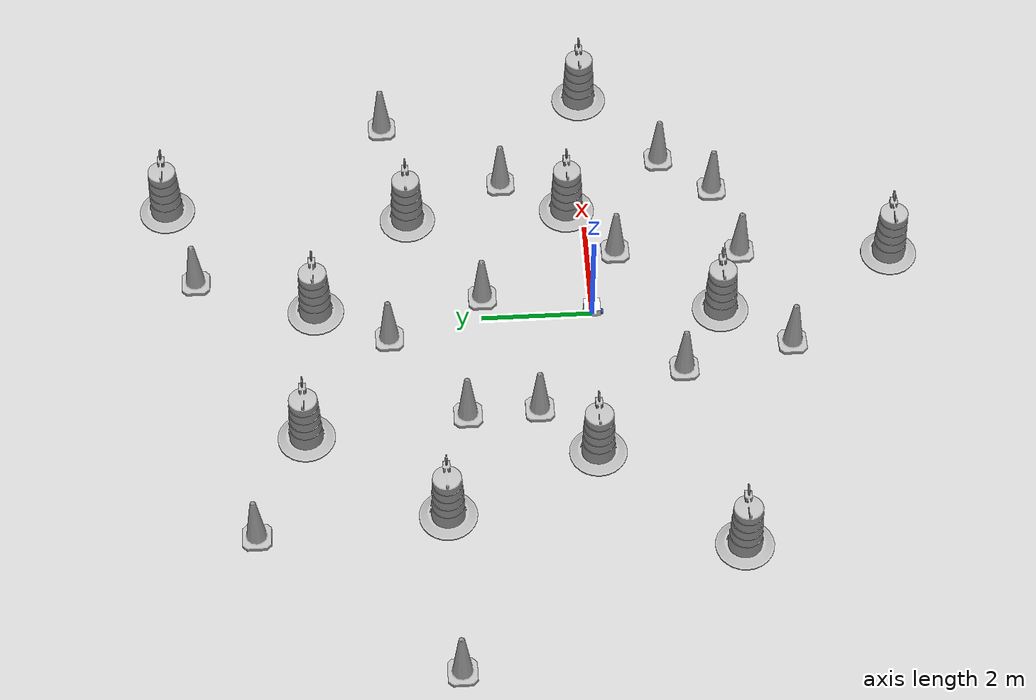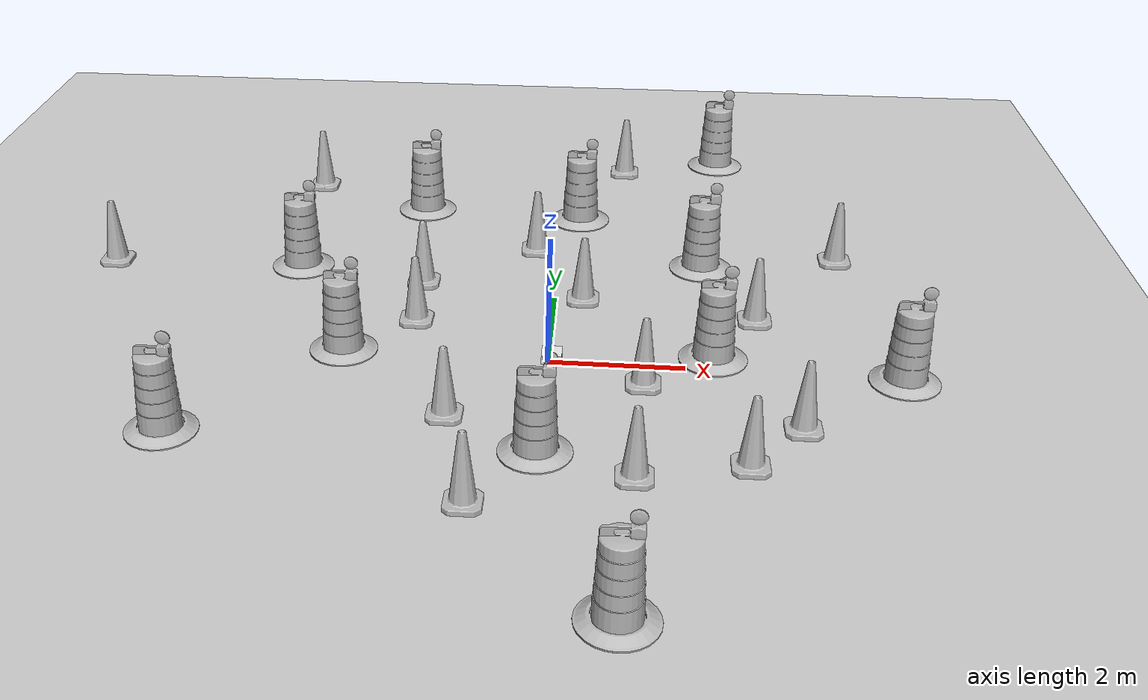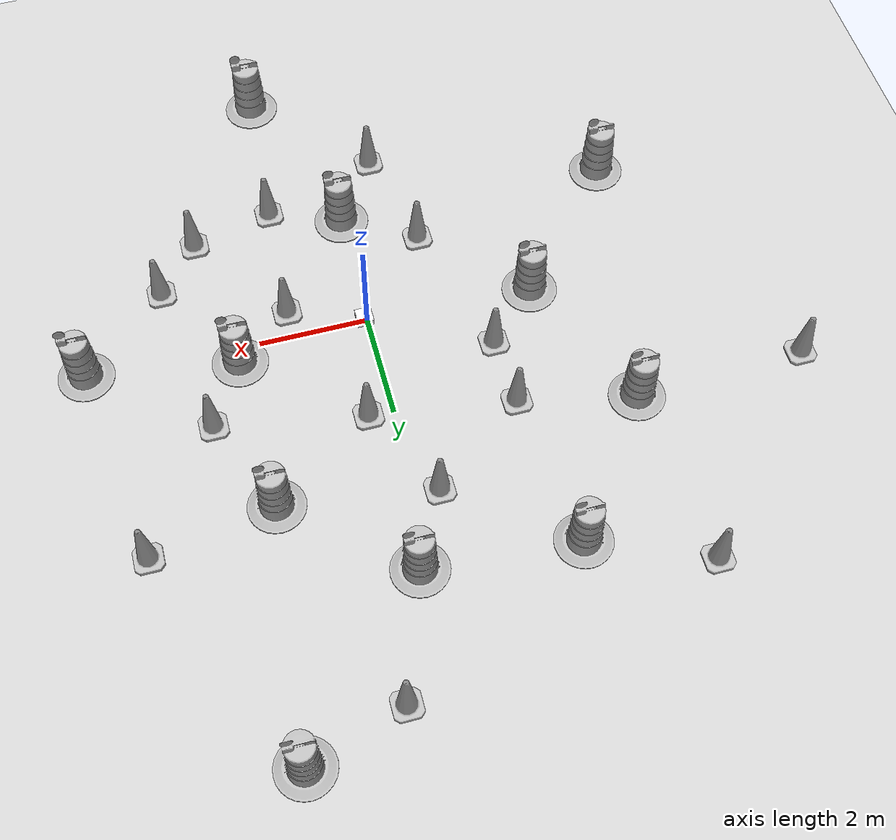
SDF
<sdf version="1.7">
 <world name="default">
  <light name="sun" type="directional">
   <pose>0 0 10 0 -0 0</pose>
   <diffuse>0.8 0.8 0.8 1</diffuse>
   <specular>0.2 0.2 0.2 1</specular>
   <attenuation>
    <range>1000</range>
    <constant>0.9</constant>
    <linear>0.01</linear>
    <quadratic>0.001</quadratic>
   </attenuation>
   <direction>-0.5 0.1 -0.9</direction>
   <spot><inner_angle>0</inner_angle><outer_angle>0</outer_angle><falloff>0</falloff></spot>
  </light>
  <model name="ground_plane">
   <static>1</static>
   <link name="link">
    <collision name="collision">
     <geometry><plane><normal>0 0 1</normal><size>100 100</size></plane></geometry>
     <surface>
      <contact><collide_bitmask>65535</collide_bitmask></contact>
      <friction><ode><mu>100</mu><mu2>50</mu2></ode></friction>
     </surface>
    </collision>
    <visual name="visual">
     <cast_shadows>0</cast_shadows>
     <geometry><plane><normal>0 0 1</normal><size>100 100</size></plane></geometry>
     <material>
      <script><uri>file://media/materials/scripts/gazebo.material</uri><name>Gazebo/Grey</name></script>
     </material>
    </visual>
   </link>
  </model>
  <gravity>0 0 -9.8</gravity>
  <magnetic_field>6e-06 2.3e-05 -4.2e-05</magnetic_field>
  <atmosphere type="adiabatic"/>
  <physics type="ode">
   <max_step_size>0.001</max_step_size>
   <real_time_factor>1</real_time_factor>
   <real_time_update_rate>1000</real_time_update_rate>
  </physics>
  <scene><ambient>0.4 0.4 0.4 1</ambient><background>0.7 0.7 0.7 1</background><shadows>1</shadows></scene>
  <audio><device>default</device></audio>
  <spherical_coordinates>
   <surface_model>EARTH_WGS84</surface_model>
   <latitude_deg>0</latitude_deg>
   <longitude_deg>0</longitude_deg>
   <elevation>0</elevation>
   <heading_deg>0</heading_deg>
  </spherical_coordinates>
  <model name="my_bot">
   <link name="base_link">
    <inertial>
     <pose>0.055714 0 0.078571 0 -0 0</pose>
     <mass>0.7</mass>
     <inertia>
      <ixx>0.0064169</ixx>
      <ixy>0</ixy>
      <ixz>0.00118929</ixz>
      <iyy>0.00745405</iyy>
      <iyz>0</iyz>
      <izz>0.00876214</izz>
     </inertia>
    </inertial>
    <collision name="base_link_fixed_joint_lump__chassis_collision">
     <pose>0.05 0 0.075 0 -0 0</pose>
     <geometry><box><size>0.3 0.3 0.15</size></box></geometry>
    </collision>
    <collision name="base_link_fixed_joint_lump__caster_wheel_collision_1">
     <pose>0.14 0 0 0 -0 0</pose>
     <geometry><sphere><radius>0.05</radius></sphere></geometry>
     <surface><friction><ode><mu>0.001</mu><mu2>0.001</mu2></ode></friction></surface>
    </collision>
    <collision name="base_link_fixed_joint_lump__laser_frame_collision_2">
     <pose>0 0 0.175 0 -0 0</pose>
     <geometry><cylinder><length>0.04</length><radius>0.05</radius></cylinder></geometry>
    </collision>
    <visual name="base_link_fixed_joint_lump__chassis_visual">
     <pose>0.05 0 0.075 0 -0 0</pose>
     <geometry><box><size>0.3 0.3 0.15</size></box></geometry>
     <material>
      <script><name>Gazebo/White</name><uri>file://media/materials/scripts/gazebo.material</uri></script>
     </material>
    </visual>
    <visual name="base_link_fixed_joint_lump__caster_wheel_visual_1">
     <pose>0.14 0 0 0 -0 0</pose>
     <geometry><sphere><radius>0.05</radius></sphere></geometry>
     <material>
      <script><name>Gazebo/Black</name><uri>file://media/materials/scripts/gazebo.material</uri></script>
     </material>
    </visual>
    <visual name="base_link_fixed_joint_lump__laser_frame_visual_2">
     <pose>0 0 0.175 0 -0 0</pose>
     <geometry><cylinder><length>0.04</length><radius>0.05</radius></cylinder></geometry>
     <material>
      <script><name>Gazebo/Red</name><uri>file://media/materials/scripts/gazebo.material</uri></script>
     </material>
    </visual>
    <sensor name="laser" type="ray">
     <visualize>1</visualize>
     <update_rate>10</update_rate>
     <ray>
      <scan>
       <horizontal>
        <samples>360</samples>
        <min_angle>-3.14</min_angle>
        <max_angle>3.14</max_angle>
        <resolution>1</resolution>
       </horizontal>
       <vertical><samples>1</samples><min_angle>0</min_angle><max_angle>0</max_angle></vertical>
      </scan>
      <range><min>0.3</min><max>12</max></range>
     </ray>
     <plugin name="laser_controller" filename="libgazebo_ros_ray_sensor.so">
      <ros><argument>~/out:=scan</argument></ros>
      <output_type>sensor_msgs/LaserScan</output_type>
      <frame_name>laser_frame</frame_name>
     </plugin>
     <pose>0 0 0.175 0 -0 0</pose>
    </sensor>
   </link>
   <joint name="left_wheel_joint" type="revolute">
    <pose relative_to="base_link">0 0.175 0 -1.5708 0 0</pose>
    <parent>base_link</parent>
    <child>left_wheel</child>
    <axis>
     <xyz>0 0 1</xyz>
     <limit><lower>-1e+16</lower><upper>1e+16</upper></limit>
     <dynamics><spring_reference>0</spring_reference><spring_stiffness>0</spring_stiffness></dynamics>
    </axis>
   </joint>
   <link name="left_wheel">
    <pose relative_to="left_wheel_joint">0 0 0 0 -0 0</pose>
    <inertial>
     <mass>0.1</mass>
     <inertia>
      <ixx>7.58333e-05</ixx>
      <ixy>0</ixy>
      <ixz>0</ixz>
      <iyy>7.58333e-05</iyy>
      <iyz>0</iyz>
      <izz>0.000125</izz>
     </inertia>
    </inertial>
    <collision name="left_wheel_collision">
     <geometry><cylinder><length>0.04</length><radius>0.05</radius></cylinder></geometry>
    </collision>
    <visual name="left_wheel_visual">
     <geometry><cylinder><length>0.04</length><radius>0.05</radius></cylinder></geometry>
     <material>
      <script><name>Gazebo/Blue</name><uri>file://media/materials/scripts/gazebo.material</uri></script>
     </material>
    </visual>
   </link>
   <joint name="right_wheel_joint" type="revolute">
    <pose relative_to="base_link">0 -0.175 0 1.5708 -0 0</pose>
    <parent>base_link</parent>
    <child>right_wheel</child>
    <axis>
     <xyz>0 0 -1</xyz>
     <limit><lower>-1e+16</lower><upper>1e+16</upper></limit>
     <dynamics><spring_reference>0</spring_reference><spring_stiffness>0</spring_stiffness></dynamics>
    </axis>
   </joint>
   <link name="right_wheel">
    <pose relative_to="right_wheel_joint">0 0 0 0 -0 0</pose>
    <inertial>
     <mass>0.1</mass>
     <inertia>
      <ixx>7.58333e-05</ixx>
      <ixy>0</ixy>
      <ixz>0</ixz>
      <iyy>7.58333e-05</iyy>
      <iyz>0</iyz>
      <izz>0.000125</izz>
     </inertia>
    </inertial>
    <collision name="right_wheel_collision">
     <geometry><cylinder><length>0.04</length><radius>0.05</radius></cylinder></geometry>
    </collision>
    <visual name="right_wheel_visual">
     <geometry><cylinder><length>0.04</length><radius>0.05</radius></cylinder></geometry>
     <material>
      <script><name>Gazebo/Blue</name><uri>file://media/materials/scripts/gazebo.material</uri></script>
     </material>
    </visual>
   </link>
   <static>0</static>
   <plugin name="diff_drive" filename="libgazebo_ros_diff_drive.so">
    <left_joint>left_wheel_joint</left_joint>
    <right_joint>right_wheel_joint</right_joint>
    <wheel_separation>0.35</wheel_separation>
    <wheel_diameter>0.1</wheel_diameter>
    <max_wheel_torque>200</max_wheel_torque>
    <max_wheel_acceleration>10.0</max_wheel_acceleration>
    <odometry_frame>odom</odometry_frame>
    <robot_base_frame>base_link</robot_base_frame>
    <publish_odom>1</publish_odom>
    <publish_odom_tf>1</publish_odom_tf>
    <publish_wheel_tf>1</publish_wheel_tf>
   </plugin>
   <pose>0.005217 3.6e-05 0.05 0 1.2e-05 0.000121</pose>
  </model>
  <model name="Construction Cone">
   <link name="link">
    <collision name="collision">
     <geometry>
      <mesh><scale>10 10 10</scale><uri>model://construction_cone/meshes/construction_cone.dae</uri></mesh>
     </geometry>
    </collision>
    <visual name="visual">
     <geometry>
      <mesh><scale>10 10 10</scale><uri>model://construction_cone/meshes/construction_cone.dae</uri></mesh>
     </geometry>
    </visual>
    <inertial>
     <inertia><ixx>1</ixx><ixy>0</ixy><ixz>0</ixz><iyy>1</iyy><iyz>0</iyz><izz>1</izz></inertia>
     <mass>1</mass>
    </inertial>
   </link>
   <pose>-1.34832 -1.55621 -0 0 -0 0</pose>
  </model>
  <model name="Construction Barrel">
   <link name="link">
    <inertial>
     <pose>0 0 0.4 0 -0 0</pose>
     <mass>500</mass>
     <inertia><ixx>51.2096</ixx><iyy>51.2096</iyy><izz>25</izz><ixy>0</ixy><ixz>0</ixz><iyz>0</iyz></inertia>
    </inertial>
    <collision name="collision">
     <geometry><mesh><uri>model://construction_barrel/meshes/construction_barrel.dae</uri></mesh></geometry>
    </collision>
    <visual name="visual">
     <geometry><mesh><uri>model://construction_barrel/meshes/construction_barrel.dae</uri></mesh></geometry>
    </visual>
   </link>
   <pose>-4.21948 2.79802 1e-06 3e-06 2e-06 -3.5e-05</pose>
  </model>
  <model name="Construction Barrel_0">
   <link name="link">
    <inertial>
     <pose>0 0 0.4 0 -0 0</pose>
     <mass>500</mass>
     <inertia><ixx>51.2096</ixx><iyy>51.2096</iyy><izz>25</izz><ixy>0</ixy><ixz>0</ixz><iyz>0</iyz></inertia>
    </inertial>
    <collision name="collision">
     <geometry><mesh><uri>model://construction_barrel/meshes/construction_barrel.dae</uri></mesh></geometry>
    </collision>
    <visual name="visual">
     <geometry><mesh><uri>model://construction_barrel/meshes/construction_barrel.dae</uri></mesh></geometry>
    </visual>
   </link>
   <pose>-2.44071 5.21406 1e-06 3e-06 2e-06 -3.4e-05</pose>
  </model>
  <model name="Construction Barrel_0_clone">
   <link name="link">
    <inertial>
     <pose>0 0 0.4 0 -0 0</pose>
     <mass>500</mass>
     <inertia><ixx>51.2096</ixx><iyy>51.2096</iyy><izz>25</izz><ixy>0</ixy><ixz>0</ixz><iyz>0</iyz></inertia>
    </inertial>
    <collision name="collision">
     <geometry><mesh><uri>model://construction_barrel/meshes/construction_barrel.dae</uri></mesh></geometry>
    </collision>
    <visual name="visual">
     <geometry><mesh><uri>model://construction_barrel/meshes/construction_barrel.dae</uri></mesh></geometry>
    </visual>
   </link>
   <pose>2.41769 0.301006 1e-06 3e-06 2e-06 -3.5e-05</pose>
  </model>
  <model name="Construction Barrel_0_clone_0">
   <link name="link">
    <inertial>
     <pose>0 0 0.4 0 -0 0</pose>
     <mass>500</mass>
     <inertia><ixx>51.2096</ixx><iyy>51.2096</iyy><izz>25</izz><ixy>0</ixy><ixz>0</ixz><iyz>0</iyz></inertia>
    </inertial>
    <collision name="collision">
     <geometry><mesh><uri>model://construction_barrel/meshes/construction_barrel.dae</uri></mesh></geometry>
    </collision>
    <visual name="visual">
     <geometry><mesh><uri>model://construction_barrel/meshes/construction_barrel.dae</uri></mesh></geometry>
    </visual>
   </link>
   <pose>2.36215 3.26494 1e-06 3e-06 2e-06 -3.5e-05</pose>
  </model>
  <model name="Construction Cone_clone">
   <link name="link">
    <collision name="collision">
     <geometry>
      <mesh><scale>10 10 10</scale><uri>model://construction_cone/meshes/construction_cone.dae</uri></mesh>
     </geometry>
    </collision>
    <visual name="visual">
     <geometry>
      <mesh><scale>10 10 10</scale><uri>model://construction_cone/meshes/construction_cone.dae</uri></mesh>
     </geometry>
    </visual>
    <inertial>
     <inertia><ixx>1</ixx><ixy>0</ixy><ixz>0</ixz><iyy>1</iyy><iyz>0</iyz><izz>1</izz></inertia>
     <mass>1</mass>
    </inertial>
   </link>
   <pose>1.25682 -2.81543 0 -0 -0 -0</pose>
  </model>
  <model name="Construction Cone_clone_0">
   <link name="link">
    <collision name="collision">
     <geometry>
      <mesh><scale>10 10 10</scale><uri>model://construction_cone/meshes/construction_cone.dae</uri></mesh>
     </geometry>
    </collision>
    <visual name="visual">
     <geometry>
      <mesh><scale>10 10 10</scale><uri>model://construction_cone/meshes/construction_cone.dae</uri></mesh>
     </geometry>
    </visual>
    <inertial>
     <inertia><ixx>1</ixx><ixy>0</ixy><ixz>0</ixz><iyy>1</iyy><iyz>0</iyz><izz>1</izz></inertia>
     <mass>1</mass>
    </inertial>
   </link>
   <pose>-0.374873 3.68644 -5e-06 -4e-06 1e-06 0</pose>
  </model>
  <model name="Construction Cone_clone_1">
   <link name="link">
    <collision name="collision">
     <geometry>
      <mesh><scale>10 10 10</scale><uri>model://construction_cone/meshes/construction_cone.dae</uri></mesh>
     </geometry>
    </collision>
    <visual name="visual">
     <geometry>
      <mesh><scale>10 10 10</scale><uri>model://construction_cone/meshes/construction_cone.dae</uri></mesh>
     </geometry>
    </visual>
    <inertial>
     <inertia><ixx>1</ixx><ixy>0</ixy><ixz>0</ixz><iyy>1</iyy><iyz>0</iyz><izz>1</izz></inertia>
     <mass>1</mass>
    </inertial>
   </link>
   <pose>-2.1375 2.35691 -5e-06 4e-06 -1e-06 0</pose>
  </model>
  <model name="Construction Cone_clone_2">
   <link name="link">
    <collision name="collision">
     <geometry>
      <mesh><scale>10 10 10</scale><uri>model://construction_cone/meshes/construction_cone.dae</uri></mesh>
     </geometry>
    </collision>
    <visual name="visual">
     <geometry>
      <mesh><scale>10 10 10</scale><uri>model://construction_cone/meshes/construction_cone.dae</uri></mesh>
     </geometry>
    </visual>
    <inertial>
     <inertia><ixx>1</ixx><ixy>0</ixy><ixz>0</ixz><iyy>1</iyy><iyz>0</iyz><izz>1</izz></inertia>
     <mass>1</mass>
    </inertial>
   </link>
   <pose>3.11499 1.49318 -5e-06 -4e-06 1e-06 0</pose>
  </model>
  <model name="Construction Cone_clone_3">
   <link name="link">
    <collision name="collision">
     <geometry>
      <mesh><scale>10 10 10</scale><uri>model://construction_cone/meshes/construction_cone.dae</uri></mesh>
     </geometry>
    </collision>
    <visual name="visual">
     <geometry>
      <mesh><scale>10 10 10</scale><uri>model://construction_cone/meshes/construction_cone.dae</uri></mesh>
     </geometry>
    </visual>
    <inertial>
     <inertia><ixx>1</ixx><ixy>0</ixy><ixz>0</ixz><iyy>1</iyy><iyz>0</iyz><izz>1</izz></inertia>
     <mass>1</mass>
    </inertial>
   </link>
   <pose>2.76141 -2.44361 -6e-06 2e-06 -0 0</pose>
  </model>
  <model name="Construction Cone_clone_4">
   <link name="link">
    <collision name="collision">
     <geometry>
      <mesh><scale>10 10 10</scale><uri>model://construction_cone/meshes/construction_cone.dae</uri></mesh>
     </geometry>
    </collision>
    <visual name="visual">
     <geometry>
      <mesh><scale>10 10 10</scale><uri>model://construction_cone/meshes/construction_cone.dae</uri></mesh>
     </geometry>
    </visual>
    <inertial>
     <inertia><ixx>1</ixx><ixy>0</ixy><ixz>0</ixz><iyy>1</iyy><iyz>0</iyz><izz>1</izz></inertia>
     <mass>1</mass>
    </inertial>
   </link>
   <pose>-0.879671 -3.55343 -8e-06 7e-06 -0 0</pose>
  </model>
  <model name="Construction Cone_clone_5">
   <link name="link">
    <collision name="collision">
     <geometry>
      <mesh><scale>10 10 10</scale><uri>model://construction_cone/meshes/construction_cone.dae</uri></mesh>
     </geometry>
    </collision>
    <visual name="visual">
     <geometry>
      <mesh><scale>10 10 10</scale><uri>model://construction_cone/meshes/construction_cone.dae</uri></mesh>
     </geometry>
    </visual>
    <inertial>
     <inertia><ixx>1</ixx><ixy>0</ixy><ixz>0</ixz><iyy>1</iyy><iyz>0</iyz><izz>1</izz></inertia>
     <mass>1</mass>
    </inertial>
   </link>
   <pose>1.38706 -0.526207 -0 0 -0 0</pose>
  </model>
  <model name="Construction Barrel_0_clone_clone">
   <link name="link">
    <inertial>
     <pose>0 0 0.4 0 -0 0</pose>
     <mass>500</mass>
     <inertia><ixx>51.2096</ixx><iyy>51.2096</iyy><izz>25</izz><ixy>0</ixy><ixz>0</ixz><iyz>0</iyz></inertia>
    </inertial>
    <collision name="collision">
     <geometry><mesh><uri>model://construction_barrel/meshes/construction_barrel.dae</uri></mesh></geometry>
    </collision>
    <visual name="visual">
     <geometry><mesh><uri>model://construction_barrel/meshes/construction_barrel.dae</uri></mesh></geometry>
    </visual>
   </link>
   <pose>-0.05058 -2.32871 -0 0 -0 -3.5e-05</pose>
  </model>
  <model name="Construction Barrel_0_clone_clone_0">
   <link name="link">
    <inertial>
     <pose>0 0 0.4 0 -0 0</pose>
     <mass>500</mass>
     <inertia><ixx>51.2096</ixx><iyy>51.2096</iyy><izz>25</izz><ixy>0</ixy><ixz>0</ixz><iyz>0</iyz></inertia>
    </inertial>
    <collision name="collision">
     <geometry><mesh><uri>model://construction_barrel/meshes/construction_barrel.dae</uri></mesh></geometry>
    </collision>
    <visual name="visual">
     <geometry><mesh><uri>model://construction_barrel/meshes/construction_barrel.dae</uri></mesh></geometry>
    </visual>
   </link>
   <pose>-3.05231 0.115286 -0 0 -0 -3.3e-05</pose>
  </model>
  <model name="Construction Barrel_0_clone_clone_1">
   <link name="link">
    <inertial>
     <pose>0 0 0.4 0 -0 0</pose>
     <mass>500</mass>
     <inertia><ixx>51.2096</ixx><iyy>51.2096</iyy><izz>25</izz><ixy>0</ixy><ixz>0</ixz><iyz>0</iyz></inertia>
    </inertial>
    <collision name="collision">
     <geometry><mesh><uri>model://construction_barrel/meshes/construction_barrel.dae</uri></mesh></geometry>
    </collision>
    <visual name="visual">
     <geometry><mesh><uri>model://construction_barrel/meshes/construction_barrel.dae</uri></mesh></geometry>
    </visual>
   </link>
   <pose>0.319263 5.0029 -0 0 -0 -3.2e-05</pose>
  </model>
  <model name="Construction Barrel_0_clone_clone_2">
   <link name="link">
    <inertial>
     <pose>0 0 0.4 0 -0 0</pose>
     <mass>500</mass>
     <inertia><ixx>51.2096</ixx><iyy>51.2096</iyy><izz>25</izz><ixy>0</ixy><ixz>0</ixz><iyz>0</iyz></inertia>
    </inertial>
    <collision name="collision">
     <geometry><mesh><uri>model://construction_barrel/meshes/construction_barrel.dae</uri></mesh></geometry>
    </collision>
    <visual name="visual">
     <geometry><mesh><uri>model://construction_barrel/meshes/construction_barrel.dae</uri></mesh></geometry>
    </visual>
   </link>
   <pose>5.12244 -0.113779 -0 0 -0 -3.1e-05</pose>
  </model>
  <model name="Construction Barrel_0_clone_clone_3">
   <link name="link">
    <inertial>
     <pose>0 0 0.4 0 -0 0</pose>
     <mass>500</mass>
     <inertia><ixx>51.2096</ixx><iyy>51.2096</iyy><izz>25</izz><ixy>0</ixy><ixz>0</ixz><iyz>0</iyz></inertia>
    </inertial>
    <collision name="collision">
     <geometry><mesh><uri>model://construction_barrel/meshes/construction_barrel.dae</uri></mesh></geometry>
    </collision>
    <visual name="visual">
     <geometry><mesh><uri>model://construction_barrel/meshes/construction_barrel.dae</uri></mesh></geometry>
    </visual>
   </link>
   <pose>-5.12722 -2.24793 -0 0 -0 -3e-05</pose>
  </model>
  <model name="Construction Barrel_0_clone_clone_4">
   <link name="link">
    <inertial>
     <pose>0 0 0.4 0 -0 0</pose>
     <mass>500</mass>
     <inertia><ixx>51.2096</ixx><iyy>51.2096</iyy><izz>25</izz><ixy>0</ixy><ixz>0</ixz><iyz>0</iyz></inertia>
    </inertial>
    <collision name="collision">
     <geometry><mesh><uri>model://construction_barrel/meshes/construction_barrel.dae</uri></mesh></geometry>
    </collision>
    <visual name="visual">
     <geometry><mesh><uri>model://construction_barrel/meshes/construction_barrel.dae</uri></mesh></geometry>
    </visual>
   </link>
   <pose>1.06105 -5.55019 -0 0 -0 -2.9e-05</pose>
  </model>
  <model name="Construction Barrel_0_clone_clone_5">
   <link name="link">
    <inertial>
     <pose>0 0 0.4 0 -0 0</pose>
     <mass>500</mass>
     <inertia><ixx>51.2096</ixx><iyy>51.2096</iyy><izz>25</izz><ixy>0</ixy><ixz>0</ixz><iyz>0</iyz></inertia>
    </inertial>
    <collision name="collision">
     <geometry><mesh><uri>model://construction_barrel/meshes/construction_barrel.dae</uri></mesh></geometry>
    </collision>
    <visual name="visual">
     <geometry><mesh><uri>model://construction_barrel/meshes/construction_barrel.dae</uri></mesh></geometry>
    </visual>
   </link>
   <pose>2.83943 7.71583 0 0 0 -2.8e-05</pose>
  </model>
  <model name="Construction Cone_clone_5_clone">
   <link name="link">
    <collision name="collision">
     <geometry>
      <mesh><scale>10 10 10</scale><uri>model://construction_cone/meshes/construction_cone.dae</uri></mesh>
     </geometry>
    </collision>
    <visual name="visual">
     <geometry>
      <mesh><scale>10 10 10</scale><uri>model://construction_cone/meshes/construction_cone.dae</uri></mesh>
     </geometry>
    </visual>
    <inertial>
     <inertia><ixx>1</ixx><ixy>0</ixy><ixz>0</ixz><iyy>1</iyy><iyz>0</iyz><izz>1</izz></inertia>
     <mass>1</mass>
    </inertial>
   </link>
   <pose>3.53865 -1.50571 -0 0 -0 0</pose>
  </model>
  <model name="Construction Cone_clone_5_clone_0">
   <link name="link">
    <collision name="collision">
     <geometry>
      <mesh><scale>10 10 10</scale><uri>model://construction_cone/meshes/construction_cone.dae</uri></mesh>
     </geometry>
    </collision>
    <visual name="visual">
     <geometry>
      <mesh><scale>10 10 10</scale><uri>model://construction_cone/meshes/construction_cone.dae</uri></mesh>
     </geometry>
    </visual>
    <inertial>
     <inertia><ixx>1</ixx><ixy>0</ixy><ixz>0</ixz><iyy>1</iyy><iyz>0</iyz><izz>1</izz></inertia>
     <mass>1</mass>
    </inertial>
   </link>
   <pose>4.60318 3.67117 -1e-05 -0 -0 -0</pose>
  </model>
  <model name="Construction Cone_clone_5_clone_1">
   <link name="link">
    <collision name="collision">
     <geometry>
      <mesh><scale>10 10 10</scale><uri>model://construction_cone/meshes/construction_cone.dae</uri></mesh>
     </geometry>
    </collision>
    <visual name="visual">
     <geometry>
      <mesh><scale>10 10 10</scale><uri>model://construction_cone/meshes/construction_cone.dae</uri></mesh>
     </geometry>
    </visual>
    <inertial>
     <inertia><ixx>1</ixx><ixy>0</ixy><ixz>0</ixz><iyy>1</iyy><iyz>0</iyz><izz>1</izz></inertia>
     <mass>1</mass>
    </inertial>
   </link>
   <pose>1.09836 7.17237 -1e-05 -1e-06 0 0</pose>
  </model>
  <model name="Construction Cone_clone_5_clone_2">
   <link name="link">
    <collision name="collision">
     <geometry>
      <mesh><scale>10 10 10</scale><uri>model://construction_cone/meshes/construction_cone.dae</uri></mesh>
     </geometry>
    </collision>
    <visual name="visual">
     <geometry>
      <mesh><scale>10 10 10</scale><uri>model://construction_cone/meshes/construction_cone.dae</uri></mesh>
     </geometry>
    </visual>
    <inertial>
     <inertia><ixx>1</ixx><ixy>0</ixy><ixz>0</ixz><iyy>1</iyy><iyz>0</iyz><izz>1</izz></inertia>
     <mass>1</mass>
    </inertial>
   </link>
   <pose>-7.35983 2.7017 -1e-05 0 -0 0</pose>
  </model>
  <model name="Construction Cone_clone_5_clone_3">
   <link name="link">
    <collision name="collision">
     <geometry>
      <mesh><scale>10 10 10</scale><uri>model://construction_cone/meshes/construction_cone.dae</uri></mesh>
     </geometry>
    </collision>
    <visual name="visual">
     <geometry>
      <mesh><scale>10 10 10</scale><uri>model://construction_cone/meshes/construction_cone.dae</uri></mesh>
     </geometry>
    </visual>
    <inertial>
     <inertia><ixx>1</ixx><ixy>0</ixy><ixz>0</ixz><iyy>1</iyy><iyz>0</iyz><izz>1</izz></inertia>
     <mass>1</mass>
    </inertial>
   </link>
   <pose>-2.0869 1.08087 -0 -0 -0 -0</pose>
  </model>
  <model name="Construction Cone_clone_5_clone_4">
   <link name="link">
    <collision name="collision">
     <geometry>
      <mesh><scale>10 10 10</scale><uri>model://construction_cone/meshes/construction_cone.dae</uri></mesh>
     </geometry>
    </collision>
    <visual name="visual">
     <geometry>
      <mesh><scale>10 10 10</scale><uri>model://construction_cone/meshes/construction_cone.dae</uri></mesh>
     </geometry>
    </visual>
    <inertial>
     <inertia><ixx>1</ixx><ixy>0</ixy><ixz>0</ixz><iyy>1</iyy><iyz>0</iyz><izz>1</izz></inertia>
     <mass>1</mass>
    </inertial>
   </link>
   <pose>-4.48575 6.09635 -0 0 -0 0</pose>
  </model>
  <model name="Construction Cone_clone_5_clone_5">
   <link name="link">
    <collision name="collision">
     <geometry>
      <mesh><scale>10 10 10</scale><uri>model://construction_cone/meshes/construction_cone.dae</uri></mesh>
     </geometry>
    </collision>
    <visual name="visual">
     <geometry>
      <mesh><scale>10 10 10</scale><uri>model://construction_cone/meshes/construction_cone.dae</uri></mesh>
     </geometry>
    </visual>
    <inertial>
     <inertia><ixx>1</ixx><ixy>0</ixy><ixz>0</ixz><iyy>1</iyy><iyz>0</iyz><izz>1</izz></inertia>
     <mass>1</mass>
    </inertial>
   </link>
   <pose>0.455438 1.97176 -0 0 -1e-06 0</pose>
  </model>
 </world>
</sdf>
